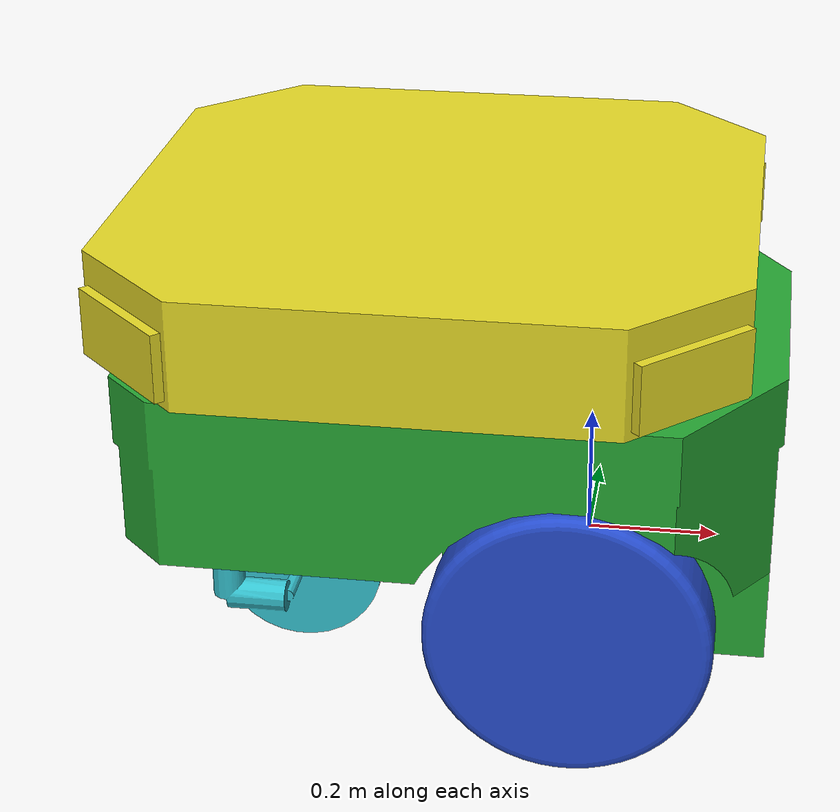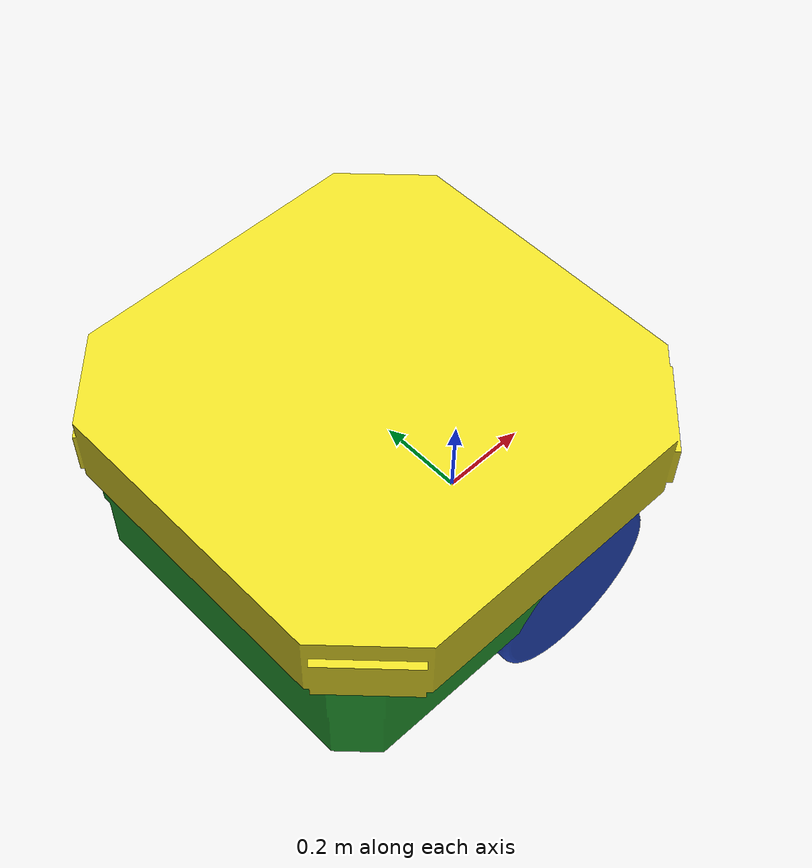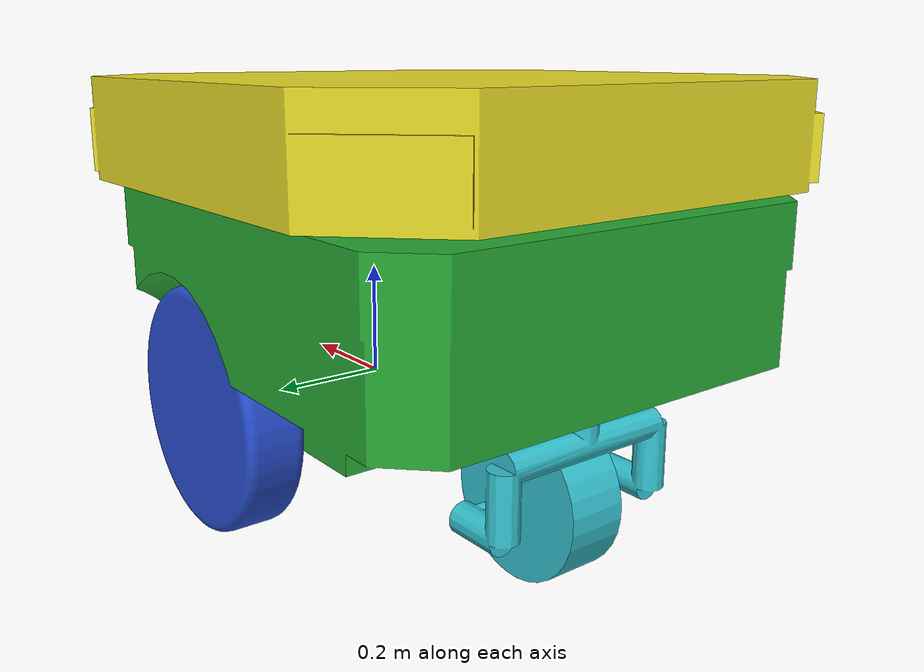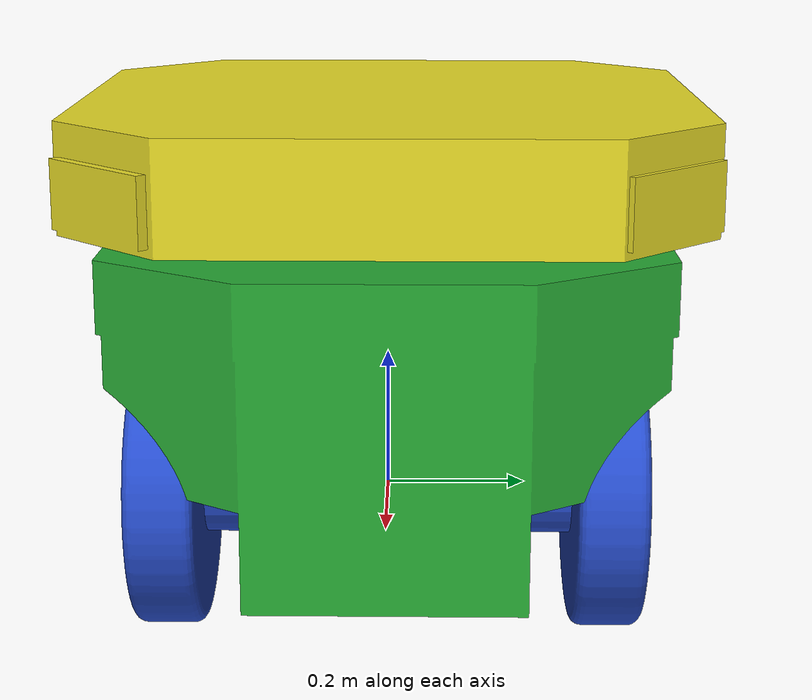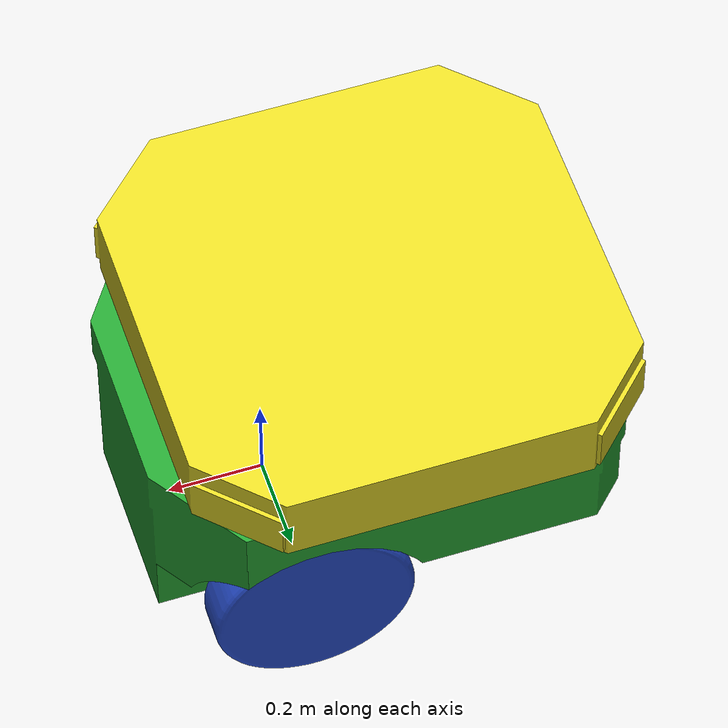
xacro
<?xml version="1.0"?>
<robot xmlns:xacro="http://ros.org/wiki/xacro">

    <!-- Define robot constants -->
    <xacro:property name="turret_height" value="0.155"/>
    <xacro:property name="wheel_radius" value="0.21"/>
    <xacro:property name="wheel_zoff" value="0.05"/>
    <xacro:property name="friction_coefficient_1" value="10"/>
    <xacro:property name="friction_coefficient_2" value="10"/>

    <!--    base link-->
    <link name="base_link">
        <visual>
            <origin xyz="0 0 0" rpy="0 0 0"/>
            <geometry>
                <mesh filename="package://padih_bot/src/meshes/base_link.STL"/>
            </geometry>
            <material name="green"/>
        </visual>
        <collision>
            <origin xyz="0 0 0" rpy="0 0 0"/>
            <geometry>
                <mesh filename="package://padih_bot/src/meshes/base_link.STL"/>
            </geometry>
        </collision>

        <inertial>
            <origin xyz="-0.17165 1.6409E-07 0.20767" rpy="0 0 0"/>
            <mass value="205.75322253489"/>
            <inertia
                    ixx="11.009"
                    ixy="-1.3566E-05"
                    ixz="1.5177"
                    iyy="17.358"
                    iyz="8.228E-06"
                    izz="22.951"/>
        </inertial>
    </link>

    <gazebo reference="base_link">
        <material>Gazebo/Green</material>
    </gazebo>

    <!-- Turret link -->
    <link name="turret_link">
        <visual>
            <origin xyz="0 0 0" rpy="0 0 0"/>
            <geometry>
                <mesh filename="package://padih_bot/src/meshes/turret_link.STL"/>
            </geometry>
            <material name="yellow"/>
        </visual>
        <collision>
            <origin xyz="0 0 0" rpy="0 0 0"/>
            <geometry>
                <mesh filename="package://padih_bot/src/meshes/turret_link.STL"/>
            </geometry>
        </collision>

        <inertial>
            <origin xyz="-7.9119E-08 0.00055954 -0.00081615" rpy="0 0 0"/>
            <mass value="132.57"/>
            <inertia
                    ixx="9.017"
                    ixy="1.2768E-09"
                    ixz="4.6709E-08"
                    iyy="9.0171"
                    iyz="-0.0018655"
                    izz="17.448"/>
        </inertial>

    </link>

    <gazebo reference="turret_link">
        <material>Gazebo/Yellow</material>
    </gazebo>

    <joint name="turret_joint" type="continuous">
        <parent link="base_link"/>
        <child link="turret_link"/>
        <origin xyz="-0.226 0 0.4681 " rpy="0 0 0"/>
        <axis xyz="0 0 1"/>
    </joint>

    <link name="lidar_support_link">
        <inertial>
            <origin xyz="-0.0506041116867669 1.2490009027033E-14 -0.137752955099086" rpy="0 0 0"/>
            <mass value="0.322551800252601"/>
            <inertia
                    ixx="0.00159851475248136"
                    ixy="-3.56160413661488E-17"
                    ixz="-0.000154603735003629"
                    iyy="0.00134122357698014"
                    iyz="-1.1418133464673E-17"
                    izz="0.000967233017102162"/>
        </inertial>
        <visual>
            <origin xyz="0 0 0" rpy="0 0 0"/>
            <geometry>
                <mesh filename="package://padih_bot/src/meshes/lidar-link.STL"/>
            </geometry>
            <material name="">
                <material name="yellow"/>
            </material>
        </visual>
        <collision>
            <origin xyz="0 0 0" rpy="0 0 0"/>
            <geometry>
                <mesh filename="package://padih_bot/src/meshes/lidar-link.STL"/>
            </geometry>
        </collision>
    </link>
    <joint name="lidar_support_joint" type="fixed">
        <origin xyz="0.0 0.0 0.0" rpy="0 0 0.0"/>
        <parent link="turret_link"/>
        <child link="lidar_support_link"/>
        <axis xyz="0 0 0"/>
    </joint>

    <!-- Robot Footprint -->
    <link name="base_footprint"/>

    <joint name="base_joint" type="fixed">
        <parent link="base_link"/>
        <child link="base_footprint"/>
        <origin xyz="0.0 0.0 -${wheel_radius}" rpy="0 0 0"/>
    </joint>

    <!--Right wheel    -->
    <link name="drivewhl_r_joint_link">
        <visual>
            <origin xyz="0 0 0" rpy="0 0 0"/>
            <geometry>
                <mesh filename="package://padih_bot/src/meshes/right_wheel_link.STL"/>
            </geometry>
            <material name="blue"/>
        </visual>
        <collision>
            <origin xyz="0 0 0" rpy="0 0 0"/>
            <geometry>
                <mesh filename="package://padih_bot/src/meshes/right_wheel_link.STL"/>
            </geometry>
        </collision>

        <inertial>
            <origin xyz="0 -5.5511E-17 -0.0094094" rpy="0 0 0"/>
            <mass value="15.26"/>
            <inertia
                    ixx="0.17652"
                    ixy="1.4258E-17"
                    ixz="-2.3032E-18"
                    iyy="0.17652"
                    iyz="-4.6246E-18"
                    izz="0.30424"/>
        </inertial>
    </link>

    <gazebo reference="drivewhl_r_joint_link">
        <material>Gazebo/Blue</material>
        <mu1 value="${friction_coefficient_1}"/>
        <mu2 value="${friction_coefficient_2}"/>
    </gazebo>

    <joint name="drivewhl_r_joint" type="continuous">
        <parent link="base_link"/>
        <child link="drivewhl_r_joint_link"/>
        <origin xyz="0 -0.31757 0" rpy="1.5708 0 0"/>
        <axis xyz="0 0 -1"/>
    </joint>

    <!-- Left wheel    -->
    <link name="drivewhl_l_joint_link">
        <visual>
            <origin xyz="0 0 0" rpy="0 0 0"/>
            <geometry>
                <mesh filename="package://padih_bot/src/meshes/left_wheel_link.STL"/>
            </geometry>
            <material name="blue"/>
        </visual>
        <collision>
            <origin xyz="0 0 0" rpy="0 0 0"/>
            <geometry>
                <mesh filename="package://padih_bot/src/meshes/left_wheel_link.STL"/>
            </geometry>
        </collision>

        <inertial>
            <origin xyz="-2.7756E-17 5.5511E-17 -0.0094094" rpy="0 0 0"/>
            <mass value="15.26"/>
            <inertia
                    ixx="0.17652"
                    ixy="-8.1863E-19"
                    ixz="0"
                    iyy="0.17652"
                    iyz="6.7085E-18"
                    izz="0.30424"/>
        </inertial>
    </link>

    <gazebo reference="drivewhl_l_joint_link">
        <material>Gazebo/Blue</material>
        <mu1 value="${friction_coefficient_1}"/>
        <mu2 value="${friction_coefficient_2}"/>
    </gazebo>

    <joint name="drivewhl_l_joint" type="continuous">
        <parent link="base_link"/>
        <child link="drivewhl_l_joint_link"/>
        <origin xyz="0 0.31757 0" rpy="-1.5708 0 0"/>
        <axis xyz="0 0 1"/>
    </joint>

    <!-- Caster Wheel -->
    <link name="back_caster">
        <visual>
            <origin xyz="0 0 0" rpy="0 0 0"/>
            <geometry>
                <mesh filename="package://padih_bot/src/meshes/caster_wheel_link.STL"/>
            </geometry>
            <material name="cyan"/>
        </visual>
        <collision>
            <origin xyz="0 0 0" rpy="0 0 0"/>
            <geometry>
                <mesh filename="package://padih_bot/src/meshes/caster_wheel_link.STL"/>
            </geometry>
        </collision>

        <inertial>
            <origin xyz="0.07524 0.17287 1.4357E-07" rpy="0 0 0"/>
            <mass value="6.74062536527573"/>
            <inertia
                    ixx="0.057604"
                    ixy="-0.0074758"
                    ixz="-4.0884E-08"
                    iyy="0.05582"
                    iyz="1.4163E-08"
                    izz="0.062763"/>
        </inertial>
    </link>

    <gazebo reference="back_caster">
        <material>Gazebo/Black</material>
        <!-- Defining caster wheel's friction coefficients for a smooth motion-->
        <mu1 value="0.01"/>
        <mu2 value="0.01"/>
    </gazebo>

    <joint name="caster_joint" type="fixed">
        <parent link="base_link"/>
        <child link="back_caster"/>
        <origin xyz="-0.547 0 0.10752" rpy="-1.5708 0 0"/>
    </joint>
</robot>
